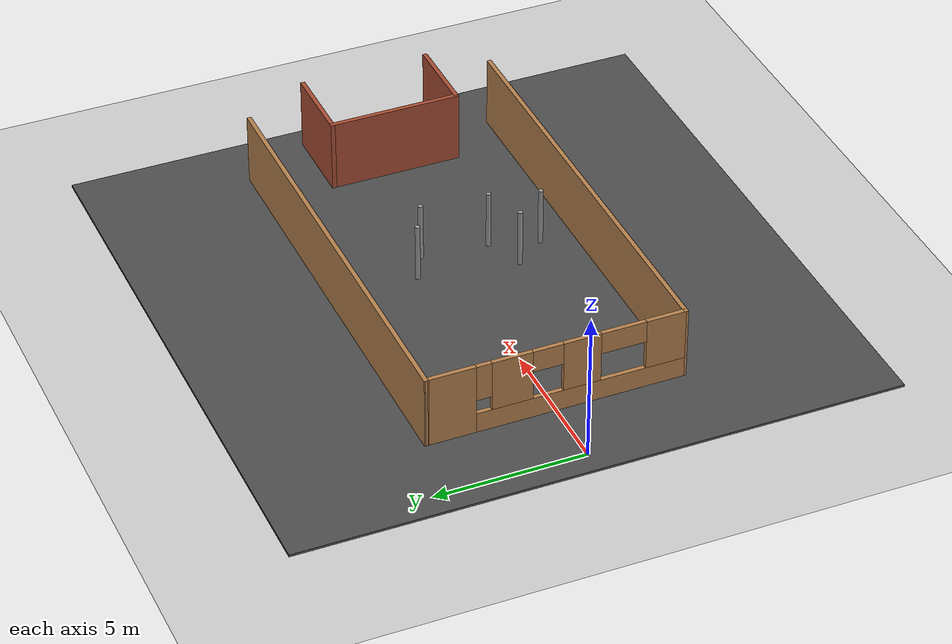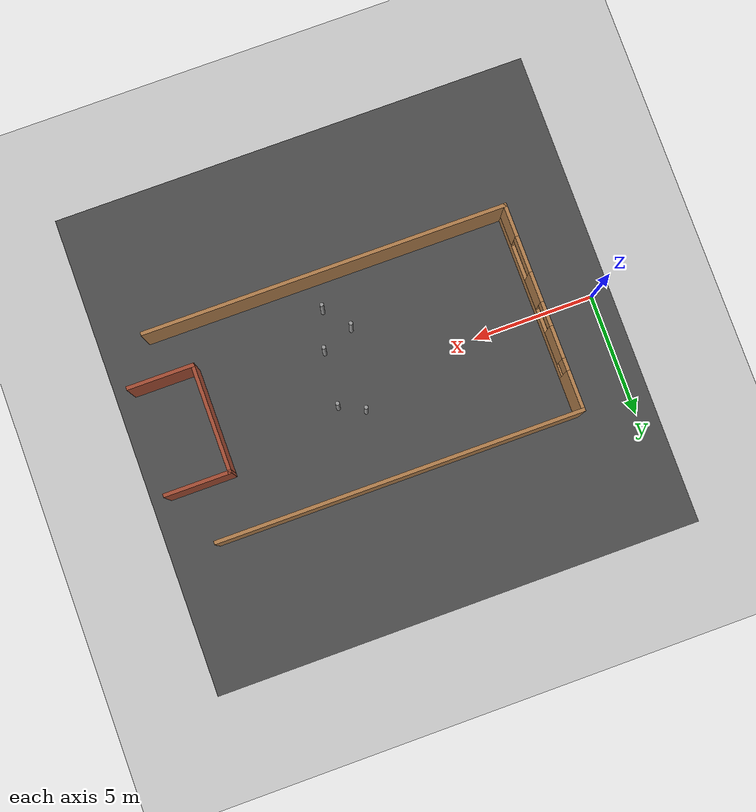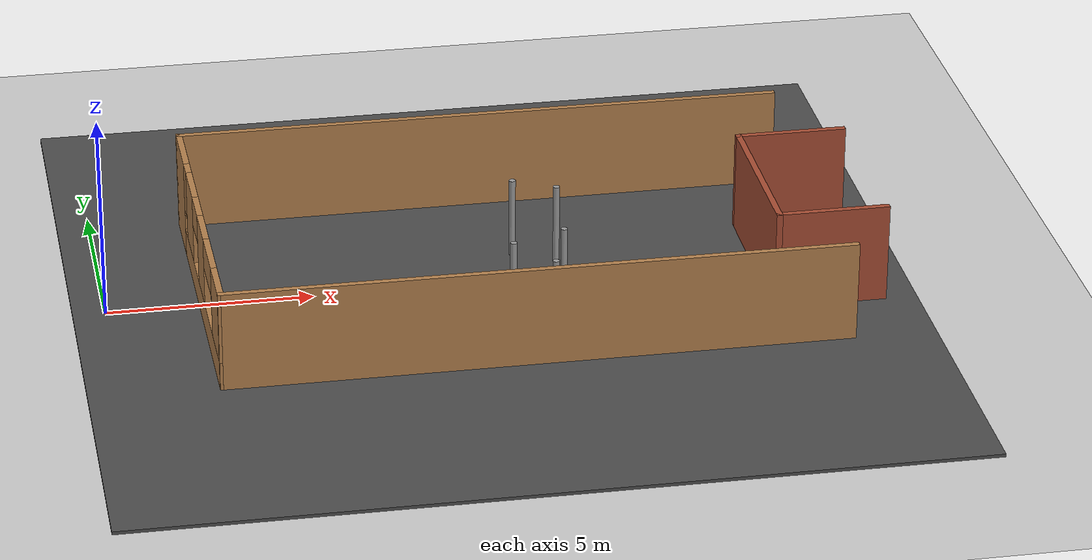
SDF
<sdf version="1.6">
 <world name="default">
  <model name="ground_plane">
   <static>1</static>
   <link name="link">
    <collision name="collision">
     <geometry><plane><normal>0 0 1</normal><size>100 100</size></plane></geometry>
     <surface><friction><ode><mu>100</mu><mu2>50</mu2></ode></friction></surface>
    </collision>
    <visual name="visual">
     <cast_shadows>0</cast_shadows>
     <geometry><plane><normal>0 0 1</normal><size>100 100</size></plane></geometry>
     <material>
      <script><uri>file://media/materials/scripts/gazebo.material</uri><name>Gazebo/Grey</name></script>
     </material>
    </visual>
   </link>
  </model>
  <model name="poste_16x200_clone_6_clone_21">
   <link name="link_1">
    <inertial>
     <mass>1</mass>
     <inertia><ixx>0.145833</ixx><ixy>0</ixy><ixz>0</ixz><iyy>0.145833</iyy><iyz>0</iyz><izz>0.125</izz></inertia>
    </inertial>
    <pose>5e-06 3e-06 0 0 -0 0</pose>
    <visual name="visual">
     <geometry><cylinder><radius>0.08</radius><length>2</length></cylinder></geometry>
     <material>
      <lighting>1</lighting>
      <script><uri>file://media/materials/scripts/gazebo.material</uri><name>Gazebo/Grey</name></script>
      <shader type="vertex"><normal_map>__default__</normal_map></shader>
      <ambient>0.3 0.3 0.3 1</ambient>
      <diffuse>0.7 0.7 0.7 1</diffuse>
      <specular>0.01 0.01 0.01 1</specular>
      <emissive>0 0 0 1</emissive>
     </material>
    </visual>
    <collision name="collision">
     <geometry><cylinder><radius>0.08</radius><length>2</length></cylinder></geometry>
     <surface>
      <friction>
       <ode><mu>1</mu><mu2>1</mu2><fdir1>0 0 0</fdir1><slip1>0</slip1><slip2>0</slip2></ode>
       <torsional>
        <coefficient>1</coefficient>
        <patch_radius>0</patch_radius>
        <surface_radius>0</surface_radius>
        <use_patch_radius>1</use_patch_radius>
        <ode><slip>0</slip></ode>
       </torsional>
      </friction>
      <bounce><restitution_coefficient>0</restitution_coefficient><threshold>1e+06</threshold></bounce>
      <contact>
       <collide_without_contact>0</collide_without_contact>
       <collide_without_contact_bitmask>1</collide_without_contact_bitmask>
       <collide_bitmask>1</collide_bitmask>
       <ode>
        <soft_cfm>0</soft_cfm>
        <soft_erp>0.2</soft_erp>
        <kp>1e+13</kp>
        <kd>1</kd>
        <max_vel>0.01</max_vel>
        <min_depth>0</min_depth>
       </ode>
       <bullet>
        <split_impulse>1</split_impulse>
        <split_impulse_penetration_threshold>-0.01</split_impulse_penetration_threshold>
        <soft_cfm>0</soft_cfm>
        <soft_erp>0.2</soft_erp>
        <kp>1e+13</kp>
        <kd>1</kd>
       </bullet>
      </contact>
     </surface>
    </collision>
   </link>
   <static>0</static>
   <pose>10.3112 -3.04353 1.05001 -6.3e-05 2.9e-05 -0.033665</pose>
  </model>
  <model name="asphalt_plane">
   <static>1</static>
   <link name="link">
    <collision name="collision"><geometry><box><size>20 20 0.1</size></box></geometry></collision>
    <visual name="visual">
     <cast_shadows>0</cast_shadows>
     <geometry><box><size>20 20 0.1</size></box></geometry>
     <material>
      <script>
       <uri>model://asphalt_plane/materials/scripts</uri>
       <uri>model://asphalt_plane/materials/textures</uri>
       <name>vrc/asphalt</name>
      </script>
     </material>
    </visual>
   </link>
   <pose>9.20899 -0.21691 0 0 -0 0</pose>
  </model>
  <model name="janelas">
   <link name="Wall_0">
    <pose>-8.0218 -0.020049 0 0 0 -1.56601</pose>
    <inertial>
     <mass>1</mass>
     <inertia><ixx>1</ixx><ixy>0</ixy><ixz>0</ixz><iyy>1</iyy><iyz>0</iyz><izz>1</izz></inertia>
    </inertial>
    <visual name="Wall_0_Visual_0">
     <pose>-3.4811 0 1.25 0 -0 0</pose>
     <geometry><box><size>1.64474 0.15 2.5</size></box></geometry>
     <material>
      <script><uri>file://media/materials/scripts/gazebo.material</uri><name>Gazebo/Wood</name></script>
      <ambient>1 1 1 1</ambient>
      <shader type="pixel"><normal_map>__default__</normal_map></shader>
      <diffuse>1 1 1 1</diffuse>
      <specular>0.2 0.2 0.2 1</specular>
      <emissive>0 0 0 1</emissive>
     </material>
     <meta><layer>0</layer></meta>
    </visual>
    <visual name="Wall_0_Visual_1">
     <pose>0.822368 0 0.375 0 -0 0</pose>
     <geometry><box><size>6.96219 0.15 0.75</size></box></geometry>
     <material>
      <script><uri>file://media/materials/scripts/gazebo.material</uri><name>Gazebo/Wood</name></script>
      <ambient>1 1 1 1</ambient>
      <shader type="pixel"><normal_map>__default__</normal_map></shader>
      <diffuse>1 1 1 1</diffuse>
      <specular>0.2 0.2 0.2 1</specular>
      <emissive>0 0 0 1</emissive>
     </material>
     <meta><layer>0</layer></meta>
    </visual>
    <visual name="Wall_0_Visual_2">
     <pose>-1.48773 0 1.625 0 -0 0</pose>
     <geometry><box><size>1.342 0.15 1.75</size></box></geometry>
     <material>
      <script><uri>file://media/materials/scripts/gazebo.material</uri><name>Gazebo/Wood</name></script>
      <ambient>1 1 1 1</ambient>
      <shader type="pixel"><normal_map>__default__</normal_map></shader>
      <diffuse>1 1 1 1</diffuse>
      <specular>0.2 0.2 0.2 1</specular>
      <emissive>0 0 0 1</emissive>
     </material>
     <meta><layer>0</layer></meta>
    </visual>
    <visual name="Wall_0_Visual_3">
     <pose>0.800404 0 1.625 0 -0 0</pose>
     <geometry><box><size>1.23426 0.15 1.75</size></box></geometry>
     <material>
      <script><uri>file://media/materials/scripts/gazebo.material</uri><name>Gazebo/Wood</name></script>
      <ambient>1 1 1 1</ambient>
      <shader type="pixel"><normal_map>__default__</normal_map></shader>
      <diffuse>1 1 1 1</diffuse>
      <specular>0.2 0.2 0.2 1</specular>
      <emissive>0 0 0 1</emissive>
     </material>
     <meta><layer>0</layer></meta>
    </visual>
    <visual name="Wall_0_Visual_4">
     <pose>3.6105 0 1.625 0 -0 0</pose>
     <geometry><box><size>1.38593 0.15 1.75</size></box></geometry>
     <material>
      <script><uri>file://media/materials/scripts/gazebo.material</uri><name>Gazebo/Wood</name></script>
      <ambient>1 1 1 1</ambient>
      <shader type="pixel"><normal_map>__default__</normal_map></shader>
      <diffuse>1 1 1 1</diffuse>
      <specular>0.2 0.2 0.2 1</specular>
      <emissive>0 0 0 1</emissive>
     </material>
     <meta><layer>0</layer></meta>
    </visual>
    <visual name="Wall_0_Visual_5">
     <pose>-2.40873 0 1.875 0 -0 0</pose>
     <geometry><box><size>0.5 0.15 1.25</size></box></geometry>
     <material>
      <script><uri>file://media/materials/scripts/gazebo.material</uri><name>Gazebo/Wood</name></script>
      <ambient>1 1 1 1</ambient>
      <shader type="pixel"><normal_map>__default__</normal_map></shader>
      <diffuse>1 1 1 1</diffuse>
      <specular>0.2 0.2 0.2 1</specular>
      <emissive>0 0 0 1</emissive>
     </material>
     <meta><layer>0</layer></meta>
    </visual>
    <visual name="Wall_0_Visual_6">
     <pose>-0.316724 0 2.125 0 -0 0</pose>
     <geometry><box><size>1 0.15 0.75</size></box></geometry>
     <material>
      <script><uri>file://media/materials/scripts/gazebo.material</uri><name>Gazebo/Wood</name></script>
      <ambient>1 1 1 1</ambient>
      <shader type="pixel"><normal_map>__default__</normal_map></shader>
      <diffuse>1 1 1 1</diffuse>
      <specular>0.2 0.2 0.2 1</specular>
      <emissive>0 0 0 1</emissive>
     </material>
     <meta><layer>0</layer></meta>
    </visual>
    <visual name="Wall_0_Visual_7">
     <pose>2.16753 0 2.125 0 -0 0</pose>
     <geometry><box><size>1.5 0.15 0.75</size></box></geometry>
     <material>
      <script><uri>file://media/materials/scripts/gazebo.material</uri><name>Gazebo/Wood</name></script>
      <ambient>1 1 1 1</ambient>
      <shader type="pixel"><normal_map>__default__</normal_map></shader>
      <diffuse>1 1 1 1</diffuse>
      <specular>0.2 0.2 0.2 1</specular>
      <emissive>0 0 0 1</emissive>
     </material>
     <meta><layer>0</layer></meta>
    </visual>
    <collision name="Wall_0_Collision_0">
     <pose>-3.4811 0 1.25 0 -0 0</pose>
     <geometry><box><size>1.64474 0.15 2.5</size></box></geometry>
     <surface>
      <friction>
       <ode><mu>1</mu><mu2>1</mu2><fdir1>0 0 0</fdir1><slip1>0</slip1><slip2>0</slip2></ode>
       <torsional>
        <coefficient>1</coefficient>
        <patch_radius>0</patch_radius>
        <surface_radius>0</surface_radius>
        <use_patch_radius>1</use_patch_radius>
        <ode><slip>0</slip></ode>
       </torsional>
      </friction>
      <bounce><restitution_coefficient>0</restitution_coefficient><threshold>1e+06</threshold></bounce>
      <contact>
       <collide_without_contact>0</collide_without_contact>
       <collide_without_contact_bitmask>1</collide_without_contact_bitmask>
       <collide_bitmask>1</collide_bitmask>
       <ode>
        <soft_cfm>0</soft_cfm>
        <soft_erp>0.2</soft_erp>
        <kp>1e+13</kp>
        <kd>1</kd>
        <max_vel>0.01</max_vel>
        <min_depth>0</min_depth>
       </ode>
       <bullet>
        <split_impulse>1</split_impulse>
        <split_impulse_penetration_threshold>-0.01</split_impulse_penetration_threshold>
        <soft_cfm>0</soft_cfm>
        <soft_erp>0.2</soft_erp>
        <kp>1e+13</kp>
        <kd>1</kd>
       </bullet>
      </contact>
     </surface>
    </collision>
    <collision name="Wall_0_Collision_1">
     <pose>0.822368 0 0.375 0 -0 0</pose>
     <geometry><box><size>6.96219 0.15 0.75</size></box></geometry>
     <surface>
      <friction>
       <ode><mu>1</mu><mu2>1</mu2><fdir1>0 0 0</fdir1><slip1>0</slip1><slip2>0</slip2></ode>
       <torsional>
        <coefficient>1</coefficient>
        <patch_radius>0</patch_radius>
        <surface_radius>0</surface_radius>
        <use_patch_radius>1</use_patch_radius>
        <ode><slip>0</slip></ode>
       </torsional>
      </friction>
      <bounce><restitution_coefficient>0</restitution_coefficient><threshold>1e+06</threshold></bounce>
      <contact>
       <collide_without_contact>0</collide_without_contact>
       <collide_without_contact_bitmask>1</collide_without_contact_bitmask>
       <collide_bitmask>1</collide_bitmask>
       <ode>
        <soft_cfm>0</soft_cfm>
        <soft_erp>0.2</soft_erp>
        <kp>1e+13</kp>
        <kd>1</kd>
        <max_vel>0.01</max_vel>
        <min_depth>0</min_depth>
       </ode>
       <bullet>
        <split_impulse>1</split_impulse>
        <split_impulse_penetration_threshold>-0.01</split_impulse_penetration_threshold>
        <soft_cfm>0</soft_cfm>
        <soft_erp>0.2</soft_erp>
        <kp>1e+13</kp>
        <kd>1</kd>
       </bullet>
      </contact>
     </surface>
    </collision>
    <collision name="Wall_0_Collision_2">
     <pose>-1.48773 0 1.625 0 -0 0</pose>
     <geometry><box><size>1.342 0.15 1.75</size></box></geometry>
     <surface>
      <friction>
       <ode><mu>1</mu><mu2>1</mu2><fdir1>0 0 0</fdir1><slip1>0</slip1><slip2>0</slip2></ode>
       <torsional>
        <coefficient>1</coefficient>
        <patch_radius>0</patch_radius>
        <surface_radius>0</surface_radius>
        <use_patch_radius>1</use_patch_radius>
        <ode><slip>0</slip></ode>
       </torsional>
      </friction>
      <bounce><restitution_coefficient>0</restitution_coefficient><threshold>1e+06</threshold></bounce>
      <contact>
       <collide_without_contact>0</collide_without_contact>
       <collide_without_contact_bitmask>1</collide_without_contact_bitmask>
       <collide_bitmask>1</collide_bitmask>
       <ode>
        <soft_cfm>0</soft_cfm>
        <soft_erp>0.2</soft_erp>
        <kp>1e+13</kp>
        <kd>1</kd>
        <max_vel>0.01</max_vel>
        <min_depth>0</min_depth>
       </ode>
       <bullet>
        <split_impulse>1</split_impulse>
        <split_impulse_penetration_threshold>-0.01</split_impulse_penetration_threshold>
        <soft_cfm>0</soft_cfm>
        <soft_erp>0.2</soft_erp>
        <kp>1e+13</kp>
        <kd>1</kd>
       </bullet>
      </contact>
     </surface>
    </collision>
    <collision name="Wall_0_Collision_4">
     <pose>3.6105 0 1.625 0 -0 0</pose>
     <geometry><box><size>1.38593 0.15 1.75</size></box></geometry>
     <surface>
      <friction>
       <ode><mu>1</mu><mu2>1</mu2><fdir1>0 0 0</fdir1><slip1>0</slip1><slip2>0</slip2></ode>
       <torsional>
        <coefficient>1</coefficient>
        <patch_radius>0</patch_radius>
        <surface_radius>0</surface_radius>
        <use_patch_radius>1</use_patch_radius>
        <ode><slip>0</slip></ode>
       </torsional>
      </friction>
      <bounce><restitution_coefficient>0</restitution_coefficient><threshold>1e+06</threshold></bounce>
      <contact>
       <collide_without_contact>0</collide_without_contact>
       <collide_without_contact_bitmask>1</collide_without_contact_bitmask>
       <collide_bitmask>1</collide_bitmask>
       <ode>
        <soft_cfm>0</soft_cfm>
        <soft_erp>0.2</soft_erp>
        <kp>1e+13</kp>
        <kd>1</kd>
        <max_vel>0.01</max_vel>
        <min_depth>0</min_depth>
       </ode>
       <bullet>
        <split_impulse>1</split_impulse>
        <split_impulse_penetration_threshold>-0.01</split_impulse_penetration_threshold>
        <soft_cfm>0</soft_cfm>
        <soft_erp>0.2</soft_erp>
        <kp>1e+13</kp>
        <kd>1</kd>
       </bullet>
      </contact>
     </surface>
    </collision>
    <collision name="Wall_0_Collision_3">
     <pose>0.800404 0 1.625 0 -0 0</pose>
     <geometry><box><size>1.23426 0.15 1.75</size></box></geometry>
     <surface>
      <friction>
       <ode><mu>1</mu><mu2>1</mu2><fdir1>0 0 0</fdir1><slip1>0</slip1><slip2>0</slip2></ode>
       <torsional>
        <coefficient>1</coefficient>
        <patch_radius>0</patch_radius>
        <surface_radius>0</surface_radius>
        <use_patch_radius>1</use_patch_radius>
        <ode><slip>0</slip></ode>
       </torsional>
      </friction>
      <bounce><restitution_coefficient>0</restitution_coefficient><threshold>1e+06</threshold></bounce>
      <contact>
       <collide_without_contact>0</collide_without_contact>
       <collide_without_contact_bitmask>1</collide_without_contact_bitmask>
       <collide_bitmask>1</collide_bitmask>
       <ode>
        <soft_cfm>0</soft_cfm>
        <soft_erp>0.2</soft_erp>
        <kp>1e+13</kp>
        <kd>1</kd>
        <max_vel>0.01</max_vel>
        <min_depth>0</min_depth>
       </ode>
       <bullet>
        <split_impulse>1</split_impulse>
        <split_impulse_penetration_threshold>-0.01</split_impulse_penetration_threshold>
        <soft_cfm>0</soft_cfm>
        <soft_erp>0.2</soft_erp>
        <kp>1e+13</kp>
        <kd>1</kd>
       </bullet>
      </contact>
     </surface>
    </collision>
    <collision name="Wall_0_Collision_5">
     <pose>-2.40873 0 1.875 0 -0 0</pose>
     <geometry><box><size>0.5 0.15 1.25</size></box></geometry>
     <surface>
      <friction>
       <ode><mu>1</mu><mu2>1</mu2><fdir1>0 0 0</fdir1><slip1>0</slip1><slip2>0</slip2></ode>
       <torsional>
        <coefficient>1</coefficient>
        <patch_radius>0</patch_radius>
        <surface_radius>0</surface_radius>
        <use_patch_radius>1</use_patch_radius>
        <ode><slip>0</slip></ode>
       </torsional>
      </friction>
      <bounce><restitution_coefficient>0</restitution_coefficient><threshold>1e+06</threshold></bounce>
      <contact>
       <collide_without_contact>0</collide_without_contact>
       <collide_without_contact_bitmask>1</collide_without_contact_bitmask>
       <collide_bitmask>1</collide_bitmask>
       <ode>
        <soft_cfm>0</soft_cfm>
        <soft_erp>0.2</soft_erp>
        <kp>1e+13</kp>
        <kd>1</kd>
        <max_vel>0.01</max_vel>
        <min_depth>0</min_depth>
       </ode>
       <bullet>
        <split_impulse>1</split_impulse>
        <split_impulse_penetration_threshold>-0.01</split_impulse_penetration_threshold>
        <soft_cfm>0</soft_cfm>
        <soft_erp>0.2</soft_erp>
        <kp>1e+13</kp>
        <kd>1</kd>
       </bullet>
      </contact>
     </surface>
    </collision>
    <collision name="Wall_0_Collision_6">
     <pose>-0.316724 0 2.125 0 -0 0</pose>
     <geometry><box><size>1 0.15 0.75</size></box></geometry>
     <surface>
      <friction>
       <ode><mu>1</mu><mu2>1</mu2><fdir1>0 0 0</fdir1><slip1>0</slip1><slip2>0</slip2></ode>
       <torsional>
        <coefficient>1</coefficient>
        <patch_radius>0</patch_radius>
        <surface_radius>0</surface_radius>
        <use_patch_radius>1</use_patch_radius>
        <ode><slip>0</slip></ode>
       </torsional>
      </friction>
      <bounce><restitution_coefficient>0</restitution_coefficient><threshold>1e+06</threshold></bounce>
      <contact>
       <collide_without_contact>0</collide_without_contact>
       <collide_without_contact_bitmask>1</collide_without_contact_bitmask>
       <collide_bitmask>1</collide_bitmask>
       <ode>
        <soft_cfm>0</soft_cfm>
        <soft_erp>0.2</soft_erp>
        <kp>1e+13</kp>
        <kd>1</kd>
        <max_vel>0.01</max_vel>
        <min_depth>0</min_depth>
       </ode>
       <bullet>
        <split_impulse>1</split_impulse>
        <split_impulse_penetration_threshold>-0.01</split_impulse_penetration_threshold>
        <soft_cfm>0</soft_cfm>
        <soft_erp>0.2</soft_erp>
        <kp>1e+13</kp>
        <kd>1</kd>
       </bullet>
      </contact>
     </surface>
    </collision>
    <collision name="Wall_0_Collision_7">
     <pose>2.16753 0 2.125 0 -0 0</pose>
     <geometry><box><size>1.5 0.15 0.75</size></box></geometry>
     <surface>
      <friction>
       <ode><mu>1</mu><mu2>1</mu2><fdir1>0 0 0</fdir1><slip1>0</slip1><slip2>0</slip2></ode>
       <torsional>
        <coefficient>1</coefficient>
        <patch_radius>0</patch_radius>
        <surface_radius>0</surface_radius>
        <use_patch_radius>1</use_patch_radius>
        <ode><slip>0</slip></ode>
       </torsional>
      </friction>
      <bounce><restitution_coefficient>0</restitution_coefficient><threshold>1e+06</threshold></bounce>
      <contact>
       <collide_without_contact>0</collide_without_contact>
       <collide_without_contact_bitmask>1</collide_without_contact_bitmask>
       <collide_bitmask>1</collide_bitmask>
       <ode>
        <soft_cfm>0</soft_cfm>
        <soft_erp>0.2</soft_erp>
        <kp>1e+13</kp>
        <kd>1</kd>
        <max_vel>0.01</max_vel>
        <min_depth>0</min_depth>
       </ode>
       <bullet>
        <split_impulse>1</split_impulse>
        <split_impulse_penetration_threshold>-0.01</split_impulse_penetration_threshold>
        <soft_cfm>0</soft_cfm>
        <soft_erp>0.2</soft_erp>
        <kp>1e+13</kp>
        <kd>1</kd>
       </bullet>
      </contact>
     </surface>
    </collision>
   </link>
   <link name="Wall_1">
    <pose>-0.576571 -4.24847 0 0 -0 0</pose>
    <inertial>
     <mass>1</mass>
     <inertia><ixx>1</ixx><ixy>0</ixy><ixz>0</ixz><iyy>1</iyy><iyz>0</iyz><izz>1</izz></inertia>
    </inertial>
    <visual name="Wall_1_Visual">
     <pose>0 0 1.25 0 -0 0</pose>
     <geometry><box><size>15 0.15 2.5</size></box></geometry>
     <material>
      <script><uri>file://media/materials/scripts/gazebo.material</uri><name>Gazebo/Wood</name></script>
      <ambient>1 1 1 1</ambient>
      <shader type="pixel"><normal_map>__default__</normal_map></shader>
      <diffuse>1 1 1 1</diffuse>
      <specular>0.2 0.2 0.2 1</specular>
      <emissive>0 0 0 1</emissive>
     </material>
     <meta><layer>0</layer></meta>
    </visual>
    <collision name="Wall_1_Collision">
     <pose>0 0 1.25 0 -0 0</pose>
     <geometry><box><size>15 0.15 2.5</size></box></geometry>
     <surface>
      <friction>
       <ode><mu>1</mu><mu2>1</mu2><fdir1>0 0 0</fdir1><slip1>0</slip1><slip2>0</slip2></ode>
       <torsional>
        <coefficient>1</coefficient>
        <patch_radius>0</patch_radius>
        <surface_radius>0</surface_radius>
        <use_patch_radius>1</use_patch_radius>
        <ode><slip>0</slip></ode>
       </torsional>
      </friction>
      <bounce><restitution_coefficient>0</restitution_coefficient><threshold>1e+06</threshold></bounce>
      <contact>
       <collide_without_contact>0</collide_without_contact>
       <collide_without_contact_bitmask>1</collide_without_contact_bitmask>
       <collide_bitmask>1</collide_bitmask>
       <ode>
        <soft_cfm>0</soft_cfm>
        <soft_erp>0.2</soft_erp>
        <kp>1e+13</kp>
        <kd>1</kd>
        <max_vel>0.01</max_vel>
        <min_depth>0</min_depth>
       </ode>
       <bullet>
        <split_impulse>1</split_impulse>
        <split_impulse_penetration_threshold>-0.01</split_impulse_penetration_threshold>
        <soft_cfm>0</soft_cfm>
        <soft_erp>0.2</soft_erp>
        <kp>1e+13</kp>
        <kd>1</kd>
       </bullet>
      </contact>
     </surface>
    </collision>
   </link>
   <link name="Wall_11">
    <pose>6.74238 1.9124 0 0 -0 0</pose>
    <visual name="Wall_11_Visual">
     <pose>0 0 1.25 0 -0 0</pose>
     <geometry><box><size>2.75 0.15 2.5</size></box></geometry>
     <material>
      <script><uri>file://media/materials/scripts/gazebo.material</uri><name>Gazebo/Bricks</name></script>
      <ambient>1 1 1 1</ambient>
      <shader type="pixel"/>
      <diffuse>1 1 1 1</diffuse>
      <specular>0.2 0.2 0.2 1</specular>
      <emissive>0 0 0 1</emissive>
     </material>
     <meta><layer>0</layer></meta>
    </visual>
    <collision name="Wall_11_Collision">
     <pose>0 0 1.25 0 -0 0</pose>
     <geometry><box><size>2.75 0.15 2.5</size></box></geometry>
     <surface>
      <friction>
       <ode><mu>1</mu><mu2>1</mu2><fdir1>0 0 0</fdir1><slip1>0</slip1><slip2>0</slip2></ode>
       <torsional>
        <coefficient>1</coefficient>
        <patch_radius>0</patch_radius>
        <surface_radius>0</surface_radius>
        <use_patch_radius>1</use_patch_radius>
        <ode><slip>0</slip></ode>
       </torsional>
      </friction>
      <bounce><restitution_coefficient>0</restitution_coefficient><threshold>1e+06</threshold></bounce>
      <contact>
       <collide_without_contact>0</collide_without_contact>
       <collide_without_contact_bitmask>1</collide_without_contact_bitmask>
       <collide_bitmask>1</collide_bitmask>
       <ode>
        <soft_cfm>0</soft_cfm>
        <soft_erp>0.2</soft_erp>
        <kp>1e+13</kp>
        <kd>1</kd>
        <max_vel>0.01</max_vel>
        <min_depth>0</min_depth>
       </ode>
       <bullet>
        <split_impulse>1</split_impulse>
        <split_impulse_penetration_threshold>-0.01</split_impulse_penetration_threshold>
        <soft_cfm>0</soft_cfm>
        <soft_erp>0.2</soft_erp>
        <kp>1e+13</kp>
        <kd>1</kd>
       </bullet>
      </contact>
     </surface>
    </collision>
   </link>
   <link name="Wall_3">
    <pose>-0.617027 4.24882 0 0 -0 0</pose>
    <inertial>
     <mass>1</mass>
     <inertia><ixx>1</ixx><ixy>0</ixy><ixz>0</ixz><iyy>1</iyy><iyz>0</iyz><izz>1</izz></inertia>
    </inertial>
    <visual name="Wall_3_Visual">
     <pose>0 0 1.25 0 -0 0</pose>
     <geometry><box><size>15 0.15 2.5</size></box></geometry>
     <material>
      <script><uri>file://media/materials/scripts/gazebo.material</uri><name>Gazebo/Wood</name></script>
      <ambient>1 1 1 1</ambient>
      <shader type="pixel"><normal_map>__default__</normal_map></shader>
      <diffuse>1 1 1 1</diffuse>
      <specular>0.2 0.2 0.2 1</specular>
      <emissive>0 0 0 1</emissive>
     </material>
     <meta><layer>0</layer></meta>
    </visual>
    <collision name="Wall_3_Collision">
     <pose>0 0 1.25 0 -0 0</pose>
     <geometry><box><size>15 0.15 2.5</size></box></geometry>
     <surface>
      <friction>
       <ode><mu>1</mu><mu2>1</mu2><fdir1>0 0 0</fdir1><slip1>0</slip1><slip2>0</slip2></ode>
       <torsional>
        <coefficient>1</coefficient>
        <patch_radius>0</patch_radius>
        <surface_radius>0</surface_radius>
        <use_patch_radius>1</use_patch_radius>
        <ode><slip>0</slip></ode>
       </torsional>
      </friction>
      <bounce><restitution_coefficient>0</restitution_coefficient><threshold>1e+06</threshold></bounce>
      <contact>
       <collide_without_contact>0</collide_without_contact>
       <collide_without_contact_bitmask>1</collide_without_contact_bitmask>
       <collide_bitmask>1</collide_bitmask>
       <ode>
        <soft_cfm>0</soft_cfm>
        <soft_erp>0.2</soft_erp>
        <kp>1e+13</kp>
        <kd>1</kd>
        <max_vel>0.01</max_vel>
        <min_depth>0</min_depth>
       </ode>
       <bullet>
        <split_impulse>1</split_impulse>
        <split_impulse_penetration_threshold>-0.01</split_impulse_penetration_threshold>
        <soft_cfm>0</soft_cfm>
        <soft_erp>0.2</soft_erp>
        <kp>1e+13</kp>
        <kd>1</kd>
       </bullet>
      </contact>
     </surface>
    </collision>
   </link>
   <link name="Wall_8">
    <pose>5.44238 -0.262605 0 0 0 -1.5708</pose>
    <inertial>
     <mass>1</mass>
     <inertia><ixx>1</ixx><ixy>0</ixy><ixz>0</ixz><iyy>1</iyy><iyz>0</iyz><izz>1</izz></inertia>
    </inertial>
    <visual name="Wall_8_Visual">
     <pose>0 0 1.25 0 -0 0</pose>
     <geometry><box><size>4.5 0.15 2.5</size></box></geometry>
     <material>
      <script><uri>file://media/materials/scripts/gazebo.material</uri><name>Gazebo/Bricks</name></script>
      <ambient>1 1 1 1</ambient>
      <shader type="pixel"><normal_map>__default__</normal_map></shader>
      <diffuse>1 1 1 1</diffuse>
      <specular>0.2 0.2 0.2 1</specular>
      <emissive>0 0 0 1</emissive>
     </material>
     <meta><layer>0</layer></meta>
    </visual>
    <collision name="Wall_8_Collision">
     <pose>0 0 1.25 0 -0 0</pose>
     <geometry><box><size>4.5 0.15 2.5</size></box></geometry>
     <surface>
      <friction>
       <ode><mu>1</mu><mu2>1</mu2><fdir1>0 0 0</fdir1><slip1>0</slip1><slip2>0</slip2></ode>
       <torsional>
        <coefficient>1</coefficient>
        <patch_radius>0</patch_radius>
        <surface_radius>0</surface_radius>
        <use_patch_radius>1</use_patch_radius>
        <ode><slip>0</slip></ode>
       </torsional>
      </friction>
      <bounce><restitution_coefficient>0</restitution_coefficient><threshold>1e+06</threshold></bounce>
      <contact>
       <collide_without_contact>0</collide_without_contact>
       <collide_without_contact_bitmask>1</collide_without_contact_bitmask>
       <collide_bitmask>1</collide_bitmask>
       <ode>
        <soft_cfm>0</soft_cfm>
        <soft_erp>0.2</soft_erp>
        <kp>1e+13</kp>
        <kd>1</kd>
        <max_vel>0.01</max_vel>
        <min_depth>0</min_depth>
       </ode>
       <bullet>
        <split_impulse>1</split_impulse>
        <split_impulse_penetration_threshold>-0.01</split_impulse_penetration_threshold>
        <soft_cfm>0</soft_cfm>
        <soft_erp>0.2</soft_erp>
        <kp>1e+13</kp>
        <kd>1</kd>
       </bullet>
      </contact>
     </surface>
    </collision>
   </link>
   <link name="Wall_9">
    <pose>6.74238 -2.4376 0 0 -0 0</pose>
    <visual name="Wall_9_Visual">
     <pose>0 0 1.25 0 -0 0</pose>
     <geometry><box><size>2.75 0.15 2.5</size></box></geometry>
     <material>
      <script><uri>file://media/materials/scripts/gazebo.material</uri><name>Gazebo/Bricks</name></script>
      <ambient>1 1 1 1</ambient>
      <shader type="pixel"/>
      <diffuse>1 1 1 1</diffuse>
      <specular>0.2 0.2 0.2 1</specular>
      <emissive>0 0 0 1</emissive>
     </material>
     <meta><layer>0</layer></meta>
    </visual>
    <collision name="Wall_9_Collision">
     <pose>0 0 1.25 0 -0 0</pose>
     <geometry><box><size>2.75 0.15 2.5</size></box></geometry>
     <surface>
      <friction>
       <ode><mu>1</mu><mu2>1</mu2><fdir1>0 0 0</fdir1><slip1>0</slip1><slip2>0</slip2></ode>
       <torsional>
        <coefficient>1</coefficient>
        <patch_radius>0</patch_radius>
        <surface_radius>0</surface_radius>
        <use_patch_radius>1</use_patch_radius>
        <ode><slip>0</slip></ode>
       </torsional>
      </friction>
      <bounce><restitution_coefficient>0</restitution_coefficient><threshold>1e+06</threshold></bounce>
      <contact>
       <collide_without_contact>0</collide_without_contact>
       <collide_without_contact_bitmask>1</collide_without_contact_bitmask>
       <collide_bitmask>1</collide_bitmask>
       <ode>
        <soft_cfm>0</soft_cfm>
        <soft_erp>0.2</soft_erp>
        <kp>1e+13</kp>
        <kd>1</kd>
        <max_vel>0.01</max_vel>
        <min_depth>0</min_depth>
       </ode>
       <bullet>
        <split_impulse>1</split_impulse>
        <split_impulse_penetration_threshold>-0.01</split_impulse_penetration_threshold>
        <soft_cfm>0</soft_cfm>
        <soft_erp>0.2</soft_erp>
        <kp>1e+13</kp>
        <kd>1</kd>
       </bullet>
      </contact>
     </surface>
    </collision>
   </link>
   <static>1</static>
   <pose>10.3261 0.006666 0 0 -0 0</pose>
  </model>
  <model name="poste_16x200_clone_6_clone_9_clone_2">
   <link name="link_1">
    <inertial>
     <mass>1</mass>
     <inertia><ixx>0.145833</ixx><ixy>0</ixy><ixz>0</ixz><iyy>0.145833</iyy><iyz>0</iyz><izz>0.125</izz></inertia>
    </inertial>
    <pose>5e-06 3e-06 0 0 -0 0</pose>
    <visual name="visual">
     <geometry><cylinder><radius>0.08</radius><length>2</length></cylinder></geometry>
     <material>
      <lighting>1</lighting>
      <script><uri>file://media/materials/scripts/gazebo.material</uri><name>Gazebo/Grey</name></script>
      <shader type="vertex"><normal_map>__default__</normal_map></shader>
      <ambient>0.3 0.3 0.3 1</ambient>
      <diffuse>0.7 0.7 0.7 1</diffuse>
      <specular>0.01 0.01 0.01 1</specular>
      <emissive>0 0 0 1</emissive>
     </material>
    </visual>
    <collision name="collision">
     <geometry><cylinder><radius>0.08</radius><length>2</length></cylinder></geometry>
     <surface>
      <friction>
       <ode><mu>1</mu><mu2>1</mu2><fdir1>0 0 0</fdir1><slip1>0</slip1><slip2>0</slip2></ode>
       <torsional>
        <coefficient>1</coefficient>
        <patch_radius>0</patch_radius>
        <surface_radius>0</surface_radius>
        <use_patch_radius>1</use_patch_radius>
        <ode><slip>0</slip></ode>
       </torsional>
      </friction>
      <bounce><restitution_coefficient>0</restitution_coefficient><threshold>1e+06</threshold></bounce>
      <contact>
       <collide_without_contact>0</collide_without_contact>
       <collide_without_contact_bitmask>1</collide_without_contact_bitmask>
       <collide_bitmask>1</collide_bitmask>
       <ode>
        <soft_cfm>0</soft_cfm>
        <soft_erp>0.2</soft_erp>
        <kp>1e+13</kp>
        <kd>1</kd>
        <max_vel>0.01</max_vel>
        <min_depth>0</min_depth>
       </ode>
       <bullet>
        <split_impulse>1</split_impulse>
        <split_impulse_penetration_threshold>-0.01</split_impulse_penetration_threshold>
        <soft_cfm>0</soft_cfm>
        <soft_erp>0.2</soft_erp>
        <kp>1e+13</kp>
        <kd>1</kd>
       </bullet>
      </contact>
     </surface>
    </collision>
   </link>
   <static>0</static>
   <pose>10.8015 -1.44846 1.05 -7.8e-05 3.5e-05 -0.092152</pose>
  </model>
  <model name="poste_16x200_clone_6_clone_9_clone_11">
   <link name="link_1">
    <inertial>
     <mass>1</mass>
     <inertia><ixx>0.145833</ixx><ixy>0</ixy><ixz>0</ixz><iyy>0.145833</iyy><iyz>0</iyz><izz>0.125</izz></inertia>
    </inertial>
    <pose>5e-06 3e-06 0 0 -0 0</pose>
    <visual name="visual">
     <geometry><cylinder><radius>0.08</radius><length>2</length></cylinder></geometry>
     <material>
      <lighting>1</lighting>
      <script><uri>file://media/materials/scripts/gazebo.material</uri><name>Gazebo/Grey</name></script>
      <shader type="vertex"><normal_map>__default__</normal_map></shader>
      <ambient>0.3 0.3 0.3 1</ambient>
      <diffuse>0.7 0.7 0.7 1</diffuse>
      <specular>0.01 0.01 0.01 1</specular>
      <emissive>0 0 0 1</emissive>
     </material>
    </visual>
    <collision name="collision">
     <geometry><cylinder><radius>0.08</radius><length>2</length></cylinder></geometry>
     <surface>
      <friction>
       <ode><mu>1</mu><mu2>1</mu2><fdir1>0 0 0</fdir1><slip1>0</slip1><slip2>0</slip2></ode>
       <torsional>
        <coefficient>1</coefficient>
        <patch_radius>0</patch_radius>
        <surface_radius>0</surface_radius>
        <use_patch_radius>1</use_patch_radius>
        <ode><slip>0</slip></ode>
       </torsional>
      </friction>
      <bounce><restitution_coefficient>0</restitution_coefficient><threshold>1e+06</threshold></bounce>
      <contact>
       <collide_without_contact>0</collide_without_contact>
       <collide_without_contact_bitmask>1</collide_without_contact_bitmask>
       <collide_bitmask>1</collide_bitmask>
       <ode>
        <soft_cfm>0</soft_cfm>
        <soft_erp>0.2</soft_erp>
        <kp>1e+13</kp>
        <kd>1</kd>
        <max_vel>0.01</max_vel>
        <min_depth>0</min_depth>
       </ode>
       <bullet>
        <split_impulse>1</split_impulse>
        <split_impulse_penetration_threshold>-0.01</split_impulse_penetration_threshold>
        <soft_cfm>0</soft_cfm>
        <soft_erp>0.2</soft_erp>
        <kp>1e+13</kp>
        <kd>1</kd>
       </bullet>
      </contact>
     </surface>
    </collision>
   </link>
   <static>0</static>
   <pose>9.49471 -1.97472 1.05001 -7.2e-05 3.2e-05 -0.05292</pose>
  </model>
  <model name="poste_16x200_clone_6_clone_14_clone_0">
   <link name="link_1">
    <inertial>
     <mass>1</mass>
     <inertia><ixx>0.145833</ixx><ixy>0</ixy><ixz>0</ixz><iyy>0.145833</iyy><iyz>0</iyz><izz>0.125</izz></inertia>
    </inertial>
    <pose>5e-06 3e-06 0 0 -0 0</pose>
    <visual name="visual">
     <geometry><cylinder><radius>0.08</radius><length>2</length></cylinder></geometry>
     <material>
      <lighting>1</lighting>
      <script><uri>file://media/materials/scripts/gazebo.material</uri><name>Gazebo/Grey</name></script>
      <shader type="vertex"><normal_map>__default__</normal_map></shader>
      <ambient>0.3 0.3 0.3 1</ambient>
      <diffuse>0.7 0.7 0.7 1</diffuse>
      <specular>0.01 0.01 0.01 1</specular>
      <emissive>0 0 0 1</emissive>
     </material>
    </visual>
    <collision name="collision">
     <geometry><cylinder><radius>0.08</radius><length>2</length></cylinder></geometry>
     <surface>
      <friction>
       <ode><mu>1</mu><mu2>1</mu2><fdir1>0 0 0</fdir1><slip1>0</slip1><slip2>0</slip2></ode>
       <torsional>
        <coefficient>1</coefficient>
        <patch_radius>0</patch_radius>
        <surface_radius>0</surface_radius>
        <use_patch_radius>1</use_patch_radius>
        <ode><slip>0</slip></ode>
       </torsional>
      </friction>
      <bounce><restitution_coefficient>0</restitution_coefficient><threshold>1e+06</threshold></bounce>
      <contact>
       <collide_without_contact>0</collide_without_contact>
       <collide_without_contact_bitmask>1</collide_without_contact_bitmask>
       <collide_bitmask>1</collide_bitmask>
       <ode>
        <soft_cfm>0</soft_cfm>
        <soft_erp>0.2</soft_erp>
        <kp>1e+13</kp>
        <kd>1</kd>
        <max_vel>0.01</max_vel>
        <min_depth>0</min_depth>
       </ode>
       <bullet>
        <split_impulse>1</split_impulse>
        <split_impulse_penetration_threshold>-0.01</split_impulse_penetration_threshold>
        <soft_cfm>0</soft_cfm>
        <soft_erp>0.2</soft_erp>
        <kp>1e+13</kp>
        <kd>1</kd>
       </bullet>
      </contact>
     </surface>
    </collision>
   </link>
   <static>0</static>
   <pose>10.0427 1.30827 1.05001 -6.9e-05 3.1e-05 -0.012211</pose>
  </model>
  <model name="poste_16x200_clone_6_clone_14_clone_1">
   <link name="link_1">
    <inertial>
     <mass>1</mass>
     <inertia><ixx>0.145833</ixx><ixy>0</ixy><ixz>0</ixz><iyy>0.145833</iyy><iyz>0</iyz><izz>0.125</izz></inertia>
    </inertial>
    <pose>5e-06 3e-06 0 0 -0 0</pose>
    <visual name="visual">
     <geometry><cylinder><radius>0.08</radius><length>2</length></cylinder></geometry>
     <material>
      <lighting>1</lighting>
      <script><uri>file://media/materials/scripts/gazebo.material</uri><name>Gazebo/Grey</name></script>
      <shader type="vertex"><normal_map>__default__</normal_map></shader>
      <ambient>0.3 0.3 0.3 1</ambient>
      <diffuse>0.7 0.7 0.7 1</diffuse>
      <specular>0.01 0.01 0.01 1</specular>
      <emissive>0 0 0 1</emissive>
     </material>
    </visual>
    <collision name="collision">
     <geometry><cylinder><radius>0.08</radius><length>2</length></cylinder></geometry>
     <surface>
      <friction>
       <ode><mu>1</mu><mu2>1</mu2><fdir1>0 0 0</fdir1><slip1>0</slip1><slip2>0</slip2></ode>
       <torsional>
        <coefficient>1</coefficient>
        <patch_radius>0</patch_radius>
        <surface_radius>0</surface_radius>
        <use_patch_radius>1</use_patch_radius>
        <ode><slip>0</slip></ode>
       </torsional>
      </friction>
      <bounce><restitution_coefficient>0</restitution_coefficient><threshold>1e+06</threshold></bounce>
      <contact>
       <collide_without_contact>0</collide_without_contact>
       <collide_without_contact_bitmask>1</collide_without_contact_bitmask>
       <collide_bitmask>1</collide_bitmask>
       <ode>
        <soft_cfm>0</soft_cfm>
        <soft_erp>0.2</soft_erp>
        <kp>1e+13</kp>
        <kd>1</kd>
        <max_vel>0.01</max_vel>
        <min_depth>0</min_depth>
       </ode>
       <bullet>
        <split_impulse>1</split_impulse>
        <split_impulse_penetration_threshold>-0.01</split_impulse_penetration_threshold>
        <soft_cfm>0</soft_cfm>
        <soft_erp>0.2</soft_erp>
        <kp>1e+13</kp>
        <kd>1</kd>
       </bullet>
      </contact>
     </surface>
    </collision>
   </link>
   <static>0</static>
   <pose>11.0304 0.793439 1.05 -7.3e-05 3.4e-05 -0.012144</pose>
  </model>
 </world>
</sdf>
